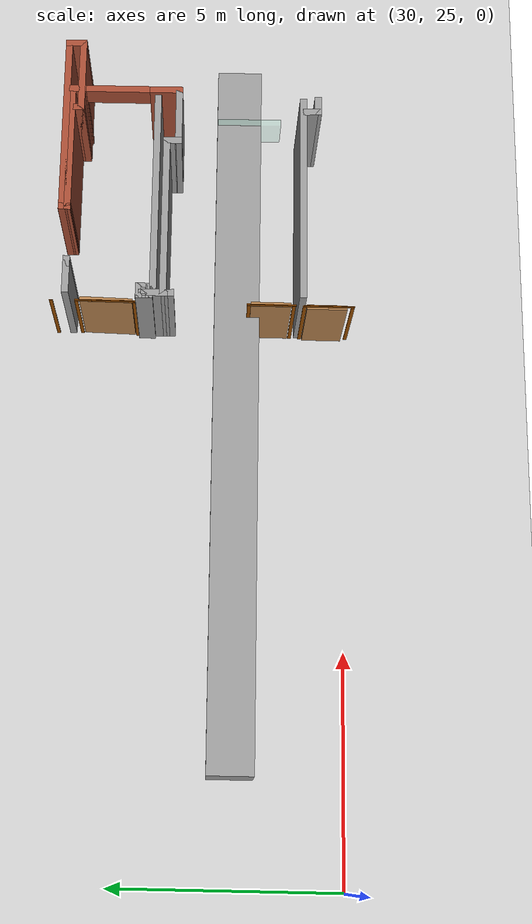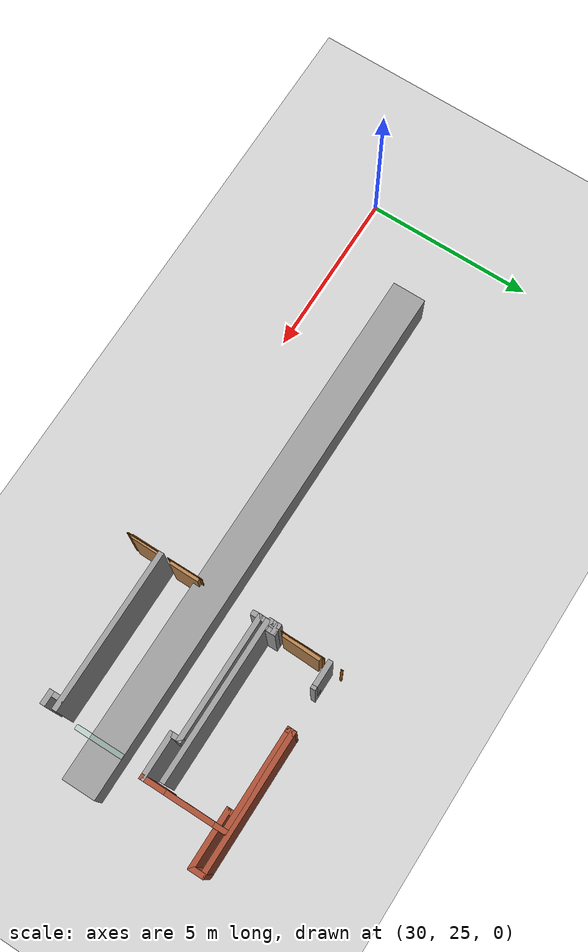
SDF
<sdf version="1.6">
 <world name="default">
  <model name="ground_plane">
   <static>1</static>
   <link name="link">
    <collision name="collision">
     <geometry><plane><normal>0 0 1</normal><size>100 100</size></plane></geometry>
     <surface><friction><ode><mu>100</mu><mu2>50</mu2></ode></friction></surface>
    </collision>
    <visual name="visual">
     <cast_shadows>0</cast_shadows>
     <geometry><plane><normal>0 0 1</normal><size>100 100</size></plane></geometry>
     <material>
      <script><uri>file://media/materials/scripts/gazebo.material</uri><name>Gazebo/Grey</name></script>
     </material>
    </visual>
   </link>
  </model>
  <model name="CVSSP">
   <pose>23.8714 24.094 0 0 -0 0</pose>
   <link name="Wall_137">
    <collision name="Wall_137_Collision">
     <geometry><box><size>0.344547 0.15 2.5</size></box></geometry>
     <pose>0 0 1.25 0 -0 0</pose>
    </collision>
    <visual name="Wall_137_Visual">
     <pose>0 0 1.25 0 -0 0</pose>
     <geometry><box><size>0.344547 0.15 2.5</size></box></geometry>
     <material>
      <script><uri>file://media/materials/scripts/gazebo.material</uri><name>Gazebo/Grey</name></script>
      <ambient>1 1 1 1</ambient>
     </material>
    </visual>
    <pose>18.4776 5.4664 0 0 -0 0</pose>
   </link>
   <link name="Wall_138">
    <collision name="Wall_138_Collision">
     <geometry><box><size>0.37481 0.15 2.5</size></box></geometry>
     <pose>0 0 1.25 0 -0 0</pose>
    </collision>
    <visual name="Wall_138_Visual">
     <pose>0 0 1.25 0 -0 0</pose>
     <geometry><box><size>0.37481 0.15 2.5</size></box></geometry>
     <material>
      <script><uri>file://media/materials/scripts/gazebo.material</uri><name>Gazebo/Grey</name></script>
      <ambient>1 1 1 1</ambient>
     </material>
    </visual>
    <pose>18.5749 5.354 0 0 0 -1.5708</pose>
   </link>
   <link name="Wall_139">
    <collision name="Wall_139_Collision">
     <geometry><box><size>0.344547 0.15 2.5</size></box></geometry>
     <pose>0 0 1.25 0 -0 0</pose>
    </collision>
    <visual name="Wall_139_Visual">
     <pose>0 0 1.25 0 -0 0</pose>
     <geometry><box><size>0.344547 0.15 2.5</size></box></geometry>
     <material>
      <script><uri>file://media/materials/scripts/gazebo.material</uri><name>Gazebo/Grey</name></script>
      <ambient>1 1 1 1</ambient>
     </material>
    </visual>
    <pose>18.4776 5.24159 0 0 -0 3.14159</pose>
   </link>
   <link name="Wall_140">
    <collision name="Wall_140_Collision">
     <geometry><box><size>0.370487 0.15 2.5</size></box></geometry>
     <pose>0 0 1.25 0 -0 0</pose>
    </collision>
    <visual name="Wall_140_Visual">
     <pose>0 0 1.25 0 -0 0</pose>
     <geometry><box><size>0.370487 0.15 2.5</size></box></geometry>
     <material>
      <script><uri>file://media/materials/scripts/gazebo.material</uri><name>Gazebo/Grey</name></script>
      <ambient>1 1 1 1</ambient>
     </material>
    </visual>
    <pose>18.3803 5.35184 0 0 -0 1.5708</pose>
   </link>
   <link name="Wall_142">
    <collision name="Wall_142_Collision">
     <geometry><box><size>4.79472 0.15 2.5</size></box></geometry>
     <pose>0 0 1.25 0 -0 0</pose>
    </collision>
    <visual name="Wall_142_Visual">
     <pose>0 0 1.25 0 -0 0</pose>
     <geometry><box><size>4.79472 0.15 2.5</size></box></geometry>
     <material>
      <script><uri>file://media/materials/scripts/gazebo.material</uri><name>Gazebo/Grey</name></script>
      <ambient>1 1 1 1</ambient>
     </material>
    </visual>
    <pose>20.7622 5.16977 0 0 0 -3.14127</pose>
   </link>
   <link name="Wall_145">
    <collision name="Wall_145_Collision">
     <geometry><box><size>3.74924 0.15 2.5</size></box></geometry>
     <pose>0 0 1.25 0 -0 0</pose>
    </collision>
    <visual name="Wall_145_Visual">
     <pose>0 0 1.25 0 -0 0</pose>
     <geometry><box><size>3.74924 0.15 2.5</size></box></geometry>
     <material>
      <script><uri>file://media/materials/scripts/gazebo.material</uri><name>Gazebo/Grey</name></script>
      <ambient>0.588235 0.588235 0.588235 1</ambient>
     </material>
    </visual>
    <pose>20.2524 4.95267 0 0 -0 0</pose>
   </link>
   <link name="Wall_146">
    <collision name="Wall_146_Collision">
     <geometry><box><size>0.407089 0.15 2.5</size></box></geometry>
     <pose>0 0 1.25 0 -0 0</pose>
    </collision>
    <visual name="Wall_146_Visual">
     <pose>0 0 1.25 0 -0 0</pose>
     <geometry><box><size>0.407089 0.15 2.5</size></box></geometry>
     <material>
      <script><uri>file://media/materials/scripts/gazebo.material</uri><name>Gazebo/Grey</name></script>
      <ambient>1 1 1 1</ambient>
     </material>
    </visual>
    <pose>22.0521 4.82421 0 0 0 -1.57054</pose>
   </link>
   <link name="Wall_147">
    <collision name="Wall_147_Collision">
     <geometry><box><size>1.39069 0.15 2.5</size></box></geometry>
     <pose>0 0 1.25 0 -0 0</pose>
    </collision>
    <visual name="Wall_147_Visual">
     <pose>0 0 1.25 0 -0 0</pose>
     <geometry><box><size>1.39069 0.15 2.5</size></box></geometry>
     <material>
      <script><uri>file://media/materials/scripts/gazebo.material</uri><name>Gazebo/Grey</name></script>
      <ambient>0.588235 0.588235 0.588235 1</ambient>
     </material>
    </visual>
    <pose>22.6726 4.69724 0 0 -0 0.002417</pose>
   </link>
   <link name="Wall_172">
    <collision name="Wall_172_Collision">
     <geometry><box><size>4.75 0.15 2.5</size></box></geometry>
     <pose>0 0 1.25 0 -0 0</pose>
    </collision>
    <visual name="Wall_172_Visual">
     <pose>0 0 1.25 0 -0 0</pose>
     <geometry><box><size>4.75 0.15 2.5</size></box></geometry>
     <material>
      <script><uri>file://media/materials/scripts/gazebo.material</uri><name>Gazebo/Grey</name></script>
      <ambient>0.588235 0.588235 0.588235 1</ambient>
     </material>
    </visual>
    <pose>20.7514 1.93058 0 0 -0 0</pose>
   </link>
   <link name="Wall_200">
    <pose>23.2929 5.89364 0 0 -0 1.57095</pose>
    <visual name="Wall_200_Visual_0">
     <pose>-0.901323 0 1.25 0 -0 0</pose>
     <geometry><box><size>0.73684 0.15 2.5</size></box></geometry>
     <material>
      <script><uri>file://media/materials/scripts/gazebo.material</uri><name>Gazebo/Bricks</name></script>
      <ambient>0.588235 0.588235 0.588235 1</ambient>
     </material>
    </visual>
    <collision name="Wall_200_Collision_0">
     <geometry><box><size>0.73684 0.15 2.5</size></box></geometry>
     <pose>-0.901323 0 1.25 0 -0 0</pose>
    </collision>
    <visual name="Wall_200_Visual_1">
     <pose>1.08077 0 1.25 0 -0 0</pose>
     <geometry><box><size>0.377951 0.15 2.5</size></box></geometry>
     <material>
      <script><uri>file://media/materials/scripts/gazebo.material</uri><name>Gazebo/Bricks</name></script>
      <ambient>0.588235 0.588235 0.588235 1</ambient>
     </material>
    </visual>
    <collision name="Wall_200_Collision_1">
     <geometry><box><size>0.377951 0.15 2.5</size></box></geometry>
     <pose>1.08077 0 1.25 0 -0 0</pose>
    </collision>
    <visual name="Wall_200_Visual_2">
     <pose>0.179445 0 2.25 0 -0 0</pose>
     <geometry><box><size>1.4247 0.15 0.5</size></box></geometry>
     <material>
      <script><uri>file://media/materials/scripts/gazebo.material</uri><name>Gazebo/Bricks</name></script>
      <ambient>0.588235 0.588235 0.588235 1</ambient>
     </material>
    </visual>
    <collision name="Wall_200_Collision_2">
     <geometry><box><size>1.4247 0.15 0.5</size></box></geometry>
     <pose>0.179445 0 2.25 0 -0 0</pose>
    </collision>
   </link>
   <link name="Wall_201">
    <collision name="Wall_201_Collision">
     <geometry><box><size>3.01986 0.15 2.5</size></box></geometry>
     <pose>0 0 1.25 0 -0 0</pose>
    </collision>
    <visual name="Wall_201_Visual">
     <pose>0 0 1.25 0 -0 0</pose>
     <geometry><box><size>3.01986 0.15 2.5</size></box></geometry>
     <material>
      <script><uri>file://media/materials/scripts/gazebo.material</uri><name>Gazebo/Bricks</name></script>
      <ambient>1 1 1 1</ambient>
     </material>
    </visual>
    <pose>21.8512 7.08991 0 0 -0 3.14064</pose>
   </link>
   <link name="Wall_203">
    <collision name="Wall_203_Collision">
     <geometry><box><size>0.268535 0.15 2.5</size></box></geometry>
     <pose>0 0 1.25 0 -0 0</pose>
    </collision>
    <visual name="Wall_203_Visual">
     <pose>0 0 1.25 0 -0 0</pose>
     <geometry><box><size>0.268535 0.15 2.5</size></box></geometry>
     <material>
      <script><uri>file://media/materials/scripts/gazebo.material</uri><name>Gazebo/Bricks</name></script>
      <ambient>1 1 1 1</ambient>
     </material>
    </visual>
    <pose>20.4196 7.15046 0 0 -0 1.5153</pose>
   </link>
   <link name="Wall_204">
    <collision name="Wall_204_Collision">
     <geometry><box><size>4.16742 0.15 2.5</size></box></geometry>
     <pose>0 0 1.25 0 -0 0</pose>
    </collision>
    <visual name="Wall_204_Visual">
     <pose>0 0 1.25 0 -0 0</pose>
     <geometry><box><size>4.16742 0.15 2.5</size></box></geometry>
     <material>
      <script><uri>file://media/materials/scripts/gazebo.material</uri><name>Gazebo/Bricks</name></script>
      <ambient>1 1 1 1</ambient>
     </material>
    </visual>
    <pose>22.425 7.20963 0 0 -0 0</pose>
   </link>
   <link name="Wall_206">
    <collision name="Wall_206_Collision">
     <geometry><box><size>0.472183 0.15 2.5</size></box></geometry>
     <pose>0 0 1.25 0 -0 0</pose>
    </collision>
    <visual name="Wall_206_Visual">
     <pose>0 0 1.25 0 -0 0</pose>
     <geometry><box><size>0.472183 0.15 2.5</size></box></geometry>
     <material>
      <script><uri>file://media/materials/scripts/gazebo.material</uri><name>Gazebo/Bricks</name></script>
      <ambient>1 1 1 1</ambient>
     </material>
    </visual>
    <pose>24.4337 7.04854 0 0 0 -1.5708</pose>
   </link>
   <link name="Wall_207">
    <collision name="Wall_207_Collision">
     <geometry><box><size>1.75 0.15 2.5</size></box></geometry>
     <pose>0 0 1.25 0 -0 0</pose>
    </collision>
    <visual name="Wall_207_Visual">
     <pose>0 0 1.25 0 -0 0</pose>
     <geometry><box><size>1.75 0.15 2.5</size></box></geometry>
     <material>
      <script><uri>file://media/materials/scripts/gazebo.material</uri><name>Gazebo/Bricks</name></script>
      <ambient>1 1 1 1</ambient>
     </material>
    </visual>
    <pose>23.6337 6.88745 0 0 -0 3.14159</pose>
   </link>
   <link name="Wall_208">
    <collision name="Wall_208_Collision">
     <geometry><box><size>0.25 0.15 2.5</size></box></geometry>
     <pose>0 0 1.25 0 -0 0</pose>
    </collision>
    <visual name="Wall_208_Visual">
     <pose>0 0 1.25 0 -0 0</pose>
     <geometry><box><size>0.25 0.15 2.5</size></box></geometry>
     <material>
      <script><uri>file://media/materials/scripts/gazebo.material</uri><name>Gazebo/Bricks</name></script>
      <ambient>1 1 1 1</ambient>
     </material>
    </visual>
    <pose>22.8337 6.93745 0 0 -0 1.5708</pose>
   </link>
   <link name="Wall_222">
    <collision name="Wall_222_Collision">
     <geometry><box><size>0.75 0.15 2.5</size></box></geometry>
     <pose>0 0 1.25 0 -0 0</pose>
    </collision>
    <visual name="Wall_222_Visual">
     <pose>0 0 1.25 0 -0 0</pose>
     <geometry><box><size>0.75 0.15 2.5</size></box></geometry>
     <material>
      <script><uri>file://media/materials/scripts/gazebo.material</uri><name>Gazebo/Grey</name></script>
      <ambient>0.588235 0.588235 0.588235 1</ambient>
     </material>
    </visual>
    <pose>18.778 7.05344 0 0 -0 0</pose>
   </link>
   <link name="Wall_223">
    <collision name="Wall_223_Collision">
     <geometry><box><size>0.25 0.15 2.5</size></box></geometry>
     <pose>0 0 1.25 0 -0 0</pose>
    </collision>
    <visual name="Wall_223_Visual">
     <pose>0 0 1.25 0 -0 0</pose>
     <geometry><box><size>0.25 0.15 2.5</size></box></geometry>
     <material>
      <script><uri>file://media/materials/scripts/gazebo.material</uri><name>Gazebo/Grey</name></script>
      <ambient>1 1 1 1</ambient>
     </material>
    </visual>
    <pose>19.128 7.05344 0 0 -0 0</pose>
   </link>
   <link name="Wall_736">
    <collision name="Wall_736_Collision">
     <geometry><box><size>0.438586 0.15 2.5</size></box></geometry>
     <pose>0 0 1.25 0 -0 0</pose>
    </collision>
    <visual name="Wall_736_Visual">
     <pose>0 0 1.25 0 -0 0</pose>
     <geometry><box><size>0.438586 0.15 2.5</size></box></geometry>
     <material>
      <script><uri>file://media/materials/scripts/gazebo.material</uri><name>Gazebo/Grey</name></script>
      <ambient>1 1 1 1</ambient>
     </material>
    </visual>
    <pose>22.952 1.6054 0 0 -0 3.14159</pose>
   </link>
   <link name="Wall_737">
    <collision name="Wall_737_Collision">
     <geometry><box><size>0.457198 0.15 2.5</size></box></geometry>
     <pose>0 0 1.25 0 -0 0</pose>
    </collision>
    <visual name="Wall_737_Visual">
     <pose>0 0 1.25 0 -0 0</pose>
     <geometry><box><size>0.457198 0.15 2.5</size></box></geometry>
     <material>
      <script><uri>file://media/materials/scripts/gazebo.material</uri><name>Gazebo/Grey</name></script>
      <ambient>1 1 1 1</ambient>
     </material>
    </visual>
    <pose>22.8034 1.75843 0 0 -0 1.59936</pose>
   </link>
   <link name="Wall_79">
    <collision name="Wall_79_Collision">
     <geometry><box><size>0.15 0.15 2.5</size></box></geometry>
     <pose>0 0 1.25 0 -0 0</pose>
    </collision>
    <visual name="Wall_79_Visual">
     <pose>0 0 1.25 0 -0 0</pose>
     <geometry><box><size>0.15 0.15 2.5</size></box></geometry>
     <material>
      <script><uri>file://media/materials/scripts/gazebo.material</uri><name>Gazebo/Grey</name></script>
      <ambient>1 1 1 1</ambient>
     </material>
    </visual>
    <pose>18.4772 5.34496 0 0 -0 0</pose>
   </link>
   <link name="Wall_80">
    <collision name="Wall_80_Collision">
     <geometry><box><size>0.15 0.15 2.5</size></box></geometry>
     <pose>0 0 1.25 0 -0 0</pose>
    </collision>
    <visual name="Wall_80_Visual">
     <pose>0 0 1.25 0 -0 0</pose>
     <geometry><box><size>0.15 0.15 2.5</size></box></geometry>
     <material>
      <script><uri>file://media/materials/scripts/gazebo.material</uri><name>Gazebo/Grey</name></script>
      <ambient>1 1 1 1</ambient>
     </material>
    </visual>
    <pose>18.4772 5.34496 0 0 -0 0</pose>
   </link>
   <link name="Wall_82">
    <collision name="Wall_82_Collision">
     <geometry><box><size>0.279389 0.15 2.5</size></box></geometry>
     <pose>0 0 1.25 0 -0 0</pose>
    </collision>
    <visual name="Wall_82_Visual">
     <pose>0 0 1.25 0 -0 0</pose>
     <geometry><box><size>0.279389 0.15 2.5</size></box></geometry>
     <material>
      <script><uri>file://media/materials/scripts/gazebo.material</uri><name>Gazebo/Grey</name></script>
      <ambient>1 1 1 1</ambient>
     </material>
    </visual>
    <pose>18.435 4.85136 0 0 -0 1.60628</pose>
   </link>
   <link name="Wall_83">
    <collision name="Wall_83_Collision">
     <geometry><box><size>0.633672 0.15 2.5</size></box></geometry>
     <pose>0 0 1.25 0 -0 0</pose>
    </collision>
    <visual name="Wall_83_Visual">
     <pose>0 0 1.25 0 -0 0</pose>
     <geometry><box><size>0.633672 0.15 2.5</size></box></geometry>
     <material>
      <script><uri>file://media/materials/scripts/gazebo.material</uri><name>Gazebo/Grey</name></script>
      <ambient>1 1 1 1</ambient>
     </material>
    </visual>
    <pose>18.4338 5.15785 0 0 -0 1.56641</pose>
   </link>
   <static>1</static>
  </model>
  <model name="window_0_clone_clone_clone_0">
   <link name="link">
    <inertial>
     <mass>0.185318</mass>
     <inertia>
      <ixx>0.0157792</ixx>
      <ixy>0</ixy>
      <ixz>0</ixz>
      <iyy>0.0398142</iyy>
      <iyz>0</iyz>
      <izz>0.0247071</izz>
     </inertia>
    </inertial>
    <visual name="visual">
     <geometry><box><size>1.44901 0.147514 0.798588</size></box></geometry>
     <material>
      <script><name>Gazebo/Grey</name><uri>file://media/materials/scripts/gazebo.material</uri></script>
      <shader type="pixel"><normal_map>__default__</normal_map></shader>
      <ambient>0.435 0.796 0.675 1</ambient>
      <diffuse>0.7 0.7 0.7 1</diffuse>
      <specular>0.01 0.01 0.01 1</specular>
      <emissive>0 0 0 1</emissive>
     </material>
     <transparency>0.8</transparency>
    </visual>
    <collision name="collision">
     <geometry><box><size>1.44901 0.147514 0.798588</size></box></geometry>
     <surface>
      <friction>
       <ode><mu>1</mu><mu2>1</mu2><fdir1>0 0 0</fdir1><slip1>0</slip1><slip2>0</slip2></ode>
       <torsional>
        <coefficient>1</coefficient>
        <patch_radius>0</patch_radius>
        <surface_radius>0</surface_radius>
        <use_patch_radius>1</use_patch_radius>
        <ode><slip>0</slip></ode>
       </torsional>
      </friction>
      <bounce><restitution_coefficient>0</restitution_coefficient><threshold>1e+06</threshold></bounce>
      <contact>
       <collide_without_contact>0</collide_without_contact>
       <collide_without_contact_bitmask>1</collide_without_contact_bitmask>
       <collide_bitmask>1</collide_bitmask>
       <ode>
        <soft_cfm>0</soft_cfm>
        <soft_erp>0.2</soft_erp>
        <kp>1e+13</kp>
        <kd>1</kd>
        <max_vel>0.01</max_vel>
        <min_depth>0</min_depth>
       </ode>
       <bullet>
        <split_impulse>1</split_impulse>
        <split_impulse_penetration_threshold>-0.01</split_impulse_penetration_threshold>
        <soft_cfm>0</soft_cfm>
        <soft_erp>0.2</soft_erp>
        <kp>1e+13</kp>
        <kd>1</kd>
       </bullet>
      </contact>
     </surface>
    </collision>
   </link>
   <static>1</static>
   <pose>47.0334 27.1977 0.904256 0 -0 1.57547</pose>
  </model>
  <model name="basic_ply_door_corrected_clone_0_clone_clone">
   <link name="link">
    <pose>-0 0 1.00385 0 -0 0</pose>
    <inertial>
     <mass>0.5167</mass>
     <inertia>
      <ixx>0.00086117</ixx>
      <ixy>0</ixy>
      <ixz>0</ixz>
      <iyy>0.00086117</iyy>
      <iyz>0</iyz>
      <izz>0.00086117</izz>
     </inertia>
    </inertial>
    <gravity>0</gravity>
    <visual name="visual">
     <geometry><box><size>0.88 0.1 1.96</size></box></geometry>
     <material>
      <script><uri>file://media/materials/scripts/gazebo.material</uri><name>Gazebo/Wood</name></script>
      <shader type="pixel"><normal_map>__default__</normal_map></shader>
      <ambient>1 1 1 1</ambient>
      <diffuse>1 1 1 1</diffuse>
      <specular>0.2 0.2 0.2 1</specular>
      <emissive>0 0 0 1</emissive>
     </material>
    </visual>
    <collision name="collision">
     <geometry><box><size>0.88 0.1 1.96</size></box></geometry>
     <surface>
      <friction>
       <ode><mu>1</mu><mu2>1</mu2><fdir1>0 0 0</fdir1><slip1>0</slip1><slip2>0</slip2></ode>
       <torsional>
        <coefficient>1</coefficient>
        <patch_radius>0</patch_radius>
        <surface_radius>0.01</surface_radius>
        <use_patch_radius>0</use_patch_radius>
        <ode><slip>0</slip></ode>
       </torsional>
      </friction>
      <bounce><restitution_coefficient>0</restitution_coefficient><threshold>1e+06</threshold></bounce>
      <contact>
       <collide_without_contact>0</collide_without_contact>
       <collide_without_contact_bitmask>1</collide_without_contact_bitmask>
       <collide_bitmask>1</collide_bitmask>
       <ode>
        <soft_cfm>0</soft_cfm>
        <soft_erp>0.2</soft_erp>
        <kp>100000</kp>
        <kd>100</kd>
        <max_vel>100</max_vel>
        <min_depth>0.001</min_depth>
       </ode>
       <bullet>
        <split_impulse>1</split_impulse>
        <split_impulse_penetration_threshold>-0.01</split_impulse_penetration_threshold>
        <soft_cfm>0</soft_cfm>
        <soft_erp>0.2</soft_erp>
        <kp>100000</kp>
        <kd>100</kd>
       </bullet>
      </contact>
     </surface>
    </collision>
   </link>
   <static>1</static>
   <pose>42.2811 26.6943 -0.00101 0 -0 1.56379</pose>
  </model>
  <model name="basic_ply_door_corrected_clone_0_clone_clone_0">
   <link name="link">
    <pose>-0 0 1.00385 0 -0 0</pose>
    <inertial>
     <mass>0.5167</mass>
     <inertia>
      <ixx>0.00086117</ixx>
      <ixy>0</ixy>
      <ixz>0</ixz>
      <iyy>0.00086117</iyy>
      <iyz>0</iyz>
      <izz>0.00086117</izz>
     </inertia>
    </inertial>
    <gravity>0</gravity>
    <visual name="visual">
     <geometry><box><size>0.88 0.1 1.96</size></box></geometry>
     <material>
      <script><uri>file://media/materials/scripts/gazebo.material</uri><name>Gazebo/Wood</name></script>
      <shader type="pixel"><normal_map>__default__</normal_map></shader>
      <ambient>1 1 1 1</ambient>
      <diffuse>1 1 1 1</diffuse>
      <specular>0.2 0.2 0.2 1</specular>
      <emissive>0 0 0 1</emissive>
     </material>
    </visual>
    <collision name="collision">
     <geometry><box><size>0.88 0.1 1.96</size></box></geometry>
     <surface>
      <friction>
       <ode><mu>1</mu><mu2>1</mu2><fdir1>0 0 0</fdir1><slip1>0</slip1><slip2>0</slip2></ode>
       <torsional>
        <coefficient>1</coefficient>
        <patch_radius>0</patch_radius>
        <surface_radius>0.01</surface_radius>
        <use_patch_radius>0</use_patch_radius>
        <ode><slip>0</slip></ode>
       </torsional>
      </friction>
      <bounce><restitution_coefficient>0</restitution_coefficient><threshold>1e+06</threshold></bounce>
      <contact>
       <collide_without_contact>0</collide_without_contact>
       <collide_without_contact_bitmask>1</collide_without_contact_bitmask>
       <collide_bitmask>1</collide_bitmask>
       <ode>
        <soft_cfm>0</soft_cfm>
        <soft_erp>0.2</soft_erp>
        <kp>100000</kp>
        <kd>100</kd>
        <max_vel>100</max_vel>
        <min_depth>0.001</min_depth>
       </ode>
       <bullet>
        <split_impulse>1</split_impulse>
        <split_impulse_penetration_threshold>-0.01</split_impulse_penetration_threshold>
        <soft_cfm>0</soft_cfm>
        <soft_erp>0.2</soft_erp>
        <kp>100000</kp>
        <kd>100</kd>
       </bullet>
      </contact>
     </surface>
    </collision>
   </link>
   <static>1</static>
   <pose>42.2357 25.4705 -0.00101 0 -0 1.56379</pose>
  </model>
  <model name="metal_radiator">
   <link name="link">
    <inertial>
     <mass>1</mass>
     <inertia>
      <ixx>0.166667</ixx>
      <ixy>0</ixy>
      <ixz>0</ixz>
      <iyy>0.166667</iyy>
      <iyz>0</iyz>
      <izz>0.166667</izz>
     </inertia>
    </inertial>
    <gravity>0</gravity>
    <visual name="visual">
     <geometry><box><size>16.0438 1 1.49588</size></box></geometry>
     <material>
      <script><name>Gazebo/Grey</name><uri>file://media/materials/scripts/gazebo.material</uri></script>
      <shader type="pixel"><normal_map>__default__</normal_map></shader>
      <emissive>0 0 0 1</emissive>
      <ambient>1 1 1 1</ambient>
      <diffuse>0.7 0.7 0.7 1</diffuse>
      <specular>0.01 0.01 0.01 1</specular>
      <lighting>0</lighting>
     </material>
    </visual>
    <collision name="collision">
     <geometry><box><size>16.0438 1 1.49588</size></box></geometry>
     <surface>
      <friction>
       <ode><mu>1</mu><mu2>1</mu2><fdir1>0 0 0</fdir1><slip1>0</slip1><slip2>0</slip2></ode>
       <torsional>
        <coefficient>1</coefficient>
        <patch_radius>0</patch_radius>
        <surface_radius>0</surface_radius>
        <use_patch_radius>1</use_patch_radius>
        <ode><slip>0</slip></ode>
       </torsional>
      </friction>
      <bounce><restitution_coefficient>0</restitution_coefficient><threshold>1e+06</threshold></bounce>
      <contact>
       <collide_without_contact>0</collide_without_contact>
       <collide_without_contact_bitmask>1</collide_without_contact_bitmask>
       <collide_bitmask>1</collide_bitmask>
       <ode>
        <soft_cfm>0</soft_cfm>
        <soft_erp>0.2</soft_erp>
        <kp>1e+13</kp>
        <kd>1</kd>
        <max_vel>0.01</max_vel>
        <min_depth>0</min_depth>
       </ode>
       <bullet>
        <split_impulse>1</split_impulse>
        <split_impulse_penetration_threshold>-0.01</split_impulse_penetration_threshold>
        <soft_cfm>0</soft_cfm>
        <soft_erp>0.2</soft_erp>
        <kp>1e+13</kp>
        <kd>1</kd>
       </bullet>
      </contact>
     </surface>
    </collision>
   </link>
   <static>1</static>
   <pose>40.2852 27.4289 0.545875 0 -0 0</pose>
  </model>
  <model name="oak_frame_0_clone_clone">
   <link name="link">
    <inertial>
     <mass>1</mass>
     <inertia>
      <ixx>0.166667</ixx>
      <ixy>0</ixy>
      <ixz>0</ixz>
      <iyy>0.166667</iyy>
      <iyz>0</iyz>
      <izz>0.166667</izz>
     </inertia>
    </inertial>
    <visual name="visual">
     <geometry><box><size>0.018685 0.076446 2.026</size></box></geometry>
     <material>
      <script><name>Gazebo/Grey</name><uri>file://media/materials/scripts/gazebo.material</uri></script>
      <shader type="pixel"><normal_map>__default__</normal_map></shader>
      <diffuse>0.58 0.29 0 0</diffuse>
      <ambient>0.58 0.29 0 1</ambient>
      <specular>0.01 0.01 0.01 1</specular>
      <emissive>0 0 0 1</emissive>
     </material>
    </visual>
    <collision name="collision">
     <geometry><box><size>0.018685 0.076446 2.026</size></box></geometry>
     <surface>
      <friction>
       <ode><mu>1</mu><mu2>1</mu2><fdir1>0 0 0</fdir1><slip1>0</slip1><slip2>0</slip2></ode>
       <torsional>
        <coefficient>1</coefficient>
        <patch_radius>0</patch_radius>
        <surface_radius>0</surface_radius>
        <use_patch_radius>1</use_patch_radius>
        <ode><slip>0</slip></ode>
       </torsional>
      </friction>
      <bounce><restitution_coefficient>0</restitution_coefficient><threshold>1e+06</threshold></bounce>
      <contact>
       <collide_without_contact>0</collide_without_contact>
       <collide_without_contact_bitmask>1</collide_without_contact_bitmask>
       <collide_bitmask>1</collide_bitmask>
       <ode>
        <soft_cfm>0</soft_cfm>
        <soft_erp>0.2</soft_erp>
        <kp>1e+13</kp>
        <kd>1</kd>
        <max_vel>0.01</max_vel>
        <min_depth>0</min_depth>
       </ode>
       <bullet>
        <split_impulse>1</split_impulse>
        <split_impulse_penetration_threshold>-0.01</split_impulse_penetration_threshold>
        <soft_cfm>0</soft_cfm>
        <soft_erp>0.2</soft_erp>
        <kp>1e+13</kp>
        <kd>1</kd>
       </bullet>
      </contact>
     </surface>
    </collision>
   </link>
   <static>1</static>
   <pose>42.2231 25.9652 1.03242 0 -0 0</pose>
  </model>
  <model name="oak_frame_0_clone_clone_0">
   <link name="link">
    <inertial>
     <mass>1</mass>
     <inertia>
      <ixx>0.166667</ixx>
      <ixy>0</ixy>
      <ixz>0</ixz>
      <iyy>0.166667</iyy>
      <iyz>0</iyz>
      <izz>0.166667</izz>
     </inertia>
    </inertial>
    <visual name="visual">
     <geometry><box><size>0.018685 0.076446 2.026</size></box></geometry>
     <material>
      <script><name>Gazebo/Grey</name><uri>file://media/materials/scripts/gazebo.material</uri></script>
      <shader type="pixel"><normal_map>__default__</normal_map></shader>
      <diffuse>0.58 0.29 0 0</diffuse>
      <ambient>0.58 0.29 0 1</ambient>
      <specular>0.01 0.01 0.01 1</specular>
      <emissive>0 0 0 1</emissive>
     </material>
    </visual>
    <collision name="collision">
     <geometry><box><size>0.018685 0.076446 2.026</size></box></geometry>
     <surface>
      <friction>
       <ode><mu>1</mu><mu2>1</mu2><fdir1>0 0 0</fdir1><slip1>0</slip1><slip2>0</slip2></ode>
       <torsional>
        <coefficient>1</coefficient>
        <patch_radius>0</patch_radius>
        <surface_radius>0</surface_radius>
        <use_patch_radius>1</use_patch_radius>
        <ode><slip>0</slip></ode>
       </torsional>
      </friction>
      <bounce><restitution_coefficient>0</restitution_coefficient><threshold>1e+06</threshold></bounce>
      <contact>
       <collide_without_contact>0</collide_without_contact>
       <collide_without_contact_bitmask>1</collide_without_contact_bitmask>
       <collide_bitmask>1</collide_bitmask>
       <ode>
        <soft_cfm>0</soft_cfm>
        <soft_erp>0.2</soft_erp>
        <kp>1e+13</kp>
        <kd>1</kd>
        <max_vel>0.01</max_vel>
        <min_depth>0</min_depth>
       </ode>
       <bullet>
        <split_impulse>1</split_impulse>
        <split_impulse_penetration_threshold>-0.01</split_impulse_penetration_threshold>
        <soft_cfm>0</soft_cfm>
        <soft_erp>0.2</soft_erp>
        <kp>1e+13</kp>
        <kd>1</kd>
       </bullet>
      </contact>
     </surface>
    </collision>
   </link>
   <static>1</static>
   <pose>42.2348 24.9161 1.03242 0 -0 0</pose>
  </model>
  <model name="oak_frame_0_clone_clone_1">
   <link name="link">
    <inertial>
     <mass>1</mass>
     <inertia>
      <ixx>0.166667</ixx>
      <ixy>0</ixy>
      <ixz>0</ixz>
      <iyy>0.166667</iyy>
      <iyz>0</iyz>
      <izz>0.166667</izz>
     </inertia>
    </inertial>
    <visual name="visual">
     <geometry><box><size>0.018685 0.076446 2.026</size></box></geometry>
     <material>
      <script><name>Gazebo/Grey</name><uri>file://media/materials/scripts/gazebo.material</uri></script>
      <shader type="pixel"><normal_map>__default__</normal_map></shader>
      <diffuse>0.58 0.29 0 0</diffuse>
      <ambient>0.58 0.29 0 1</ambient>
      <specular>0.01 0.01 0.01 1</specular>
      <emissive>0 0 0 1</emissive>
     </material>
    </visual>
    <collision name="collision">
     <geometry><box><size>0.018685 0.076446 2.026</size></box></geometry>
     <surface>
      <friction>
       <ode><mu>1</mu><mu2>1</mu2><fdir1>0 0 0</fdir1><slip1>0</slip1><slip2>0</slip2></ode>
       <torsional>
        <coefficient>1</coefficient>
        <patch_radius>0</patch_radius>
        <surface_radius>0</surface_radius>
        <use_patch_radius>1</use_patch_radius>
        <ode><slip>0</slip></ode>
       </torsional>
      </friction>
      <bounce><restitution_coefficient>0</restitution_coefficient><threshold>1e+06</threshold></bounce>
      <contact>
       <collide_without_contact>0</collide_without_contact>
       <collide_without_contact_bitmask>1</collide_without_contact_bitmask>
       <collide_bitmask>1</collide_bitmask>
       <ode>
        <soft_cfm>0</soft_cfm>
        <soft_erp>0.2</soft_erp>
        <kp>1e+13</kp>
        <kd>1</kd>
        <max_vel>0.01</max_vel>
        <min_depth>0</min_depth>
       </ode>
       <bullet>
        <split_impulse>1</split_impulse>
        <split_impulse_penetration_threshold>-0.01</split_impulse_penetration_threshold>
        <soft_cfm>0</soft_cfm>
        <soft_erp>0.2</soft_erp>
        <kp>1e+13</kp>
        <kd>1</kd>
       </bullet>
      </contact>
     </surface>
    </collision>
   </link>
   <static>1</static>
   <pose>42.2324 26.1959 1.03242 0 -0 0</pose>
  </model>
  <model name="oak_frame_0_clone_clone_2">
   <link name="link">
    <inertial>
     <mass>1</mass>
     <inertia>
      <ixx>0.166667</ixx>
      <ixy>0</ixy>
      <ixz>0</ixz>
      <iyy>0.166667</iyy>
      <iyz>0</iyz>
      <izz>0.166667</izz>
     </inertia>
    </inertial>
    <visual name="visual">
     <geometry><box><size>0.018685 0.076446 2.026</size></box></geometry>
     <material>
      <script><name>Gazebo/Grey</name><uri>file://media/materials/scripts/gazebo.material</uri></script>
      <shader type="pixel"><normal_map>__default__</normal_map></shader>
      <diffuse>0.58 0.29 0 0</diffuse>
      <ambient>0.58 0.29 0 1</ambient>
      <specular>0.01 0.01 0.01 1</specular>
      <emissive>0 0 0 1</emissive>
     </material>
    </visual>
    <collision name="collision">
     <geometry><box><size>0.018685 0.076446 2.026</size></box></geometry>
     <surface>
      <friction>
       <ode><mu>1</mu><mu2>1</mu2><fdir1>0 0 0</fdir1><slip1>0</slip1><slip2>0</slip2></ode>
       <torsional>
        <coefficient>1</coefficient>
        <patch_radius>0</patch_radius>
        <surface_radius>0</surface_radius>
        <use_patch_radius>1</use_patch_radius>
        <ode><slip>0</slip></ode>
       </torsional>
      </friction>
      <bounce><restitution_coefficient>0</restitution_coefficient><threshold>1e+06</threshold></bounce>
      <contact>
       <collide_without_contact>0</collide_without_contact>
       <collide_without_contact_bitmask>1</collide_without_contact_bitmask>
       <collide_bitmask>1</collide_bitmask>
       <ode>
        <soft_cfm>0</soft_cfm>
        <soft_erp>0.2</soft_erp>
        <kp>1e+13</kp>
        <kd>1</kd>
        <max_vel>0.01</max_vel>
        <min_depth>0</min_depth>
       </ode>
       <bullet>
        <split_impulse>1</split_impulse>
        <split_impulse_penetration_threshold>-0.01</split_impulse_penetration_threshold>
        <soft_cfm>0</soft_cfm>
        <soft_erp>0.2</soft_erp>
        <kp>1e+13</kp>
        <kd>1</kd>
       </bullet>
      </contact>
     </surface>
    </collision>
   </link>
   <static>1</static>
   <pose>42.2379 27.1754 1.03242 0 -0 0</pose>
  </model>
  <model name="oak_frame_0_clone_clone_3">
   <link name="link">
    <inertial>
     <mass>1</mass>
     <inertia>
      <ixx>0.166667</ixx>
      <ixy>0</ixy>
      <ixz>0</ixz>
      <iyy>0.166667</iyy>
      <iyz>0</iyz>
      <izz>0.166667</izz>
     </inertia>
    </inertial>
    <visual name="visual">
     <geometry><box><size>0.018685 0.076446 2.026</size></box></geometry>
     <material>
      <script><name>Gazebo/Grey</name><uri>file://media/materials/scripts/gazebo.material</uri></script>
      <shader type="pixel"><normal_map>__default__</normal_map></shader>
      <diffuse>0.58 0.29 0 0</diffuse>
      <ambient>0.58 0.29 0 1</ambient>
      <specular>0.01 0.01 0.01 1</specular>
      <emissive>0 0 0 1</emissive>
     </material>
    </visual>
    <collision name="collision">
     <geometry><box><size>0.018685 0.076446 2.026</size></box></geometry>
     <surface>
      <friction>
       <ode><mu>1</mu><mu2>1</mu2><fdir1>0 0 0</fdir1><slip1>0</slip1><slip2>0</slip2></ode>
       <torsional>
        <coefficient>1</coefficient>
        <patch_radius>0</patch_radius>
        <surface_radius>0</surface_radius>
        <use_patch_radius>1</use_patch_radius>
        <ode><slip>0</slip></ode>
       </torsional>
      </friction>
      <bounce><restitution_coefficient>0</restitution_coefficient><threshold>1e+06</threshold></bounce>
      <contact>
       <collide_without_contact>0</collide_without_contact>
       <collide_without_contact_bitmask>1</collide_without_contact_bitmask>
       <collide_bitmask>1</collide_bitmask>
       <ode>
        <soft_cfm>0</soft_cfm>
        <soft_erp>0.2</soft_erp>
        <kp>1e+13</kp>
        <kd>1</kd>
        <max_vel>0.01</max_vel>
        <min_depth>0</min_depth>
       </ode>
       <bullet>
        <split_impulse>1</split_impulse>
        <split_impulse_penetration_threshold>-0.01</split_impulse_penetration_threshold>
        <soft_cfm>0</soft_cfm>
        <soft_erp>0.2</soft_erp>
        <kp>1e+13</kp>
        <kd>1</kd>
       </bullet>
      </contact>
     </surface>
    </collision>
   </link>
   <static>1</static>
   <pose>42.2743 31.4853 1.03242 0 -0 0</pose>
  </model>
  <model name="basic_ply_door_corrected_stairs">
   <link name="link">
    <pose>0 0 1.00385 0 -0 0</pose>
    <inertial>
     <mass>0.5167</mass>
     <inertia>
      <ixx>0.00086117</ixx>
      <ixy>0</ixy>
      <ixz>0</ixz>
      <iyy>0.00086117</iyy>
      <iyz>0</iyz>
      <izz>0.00086117</izz>
     </inertia>
    </inertial>
    <visual name="visual">
     <geometry><box><size>1.15 0.1 1.96</size></box></geometry>
     <material>
      <script><uri>file://media/materials/scripts/gazebo.material</uri><name>Gazebo/Wood</name></script>
      <shader type="pixel"><normal_map>__default__</normal_map></shader>
      <ambient>1 1 1 1</ambient>
      <diffuse>1 1 1 1</diffuse>
      <specular>0.2 0.2 0.2 1</specular>
      <emissive>0 0 0 1</emissive>
     </material>
    </visual>
    <collision name="collision">
     <geometry><box><size>1.15 0.1 1.96</size></box></geometry>
     <surface>
      <friction>
       <ode><mu>1</mu><mu2>1</mu2><fdir1>0 0 0</fdir1><slip1>0</slip1><slip2>0</slip2></ode>
       <torsional>
        <coefficient>1</coefficient>
        <patch_radius>0</patch_radius>
        <surface_radius>0.01</surface_radius>
        <use_patch_radius>0</use_patch_radius>
        <ode><slip>0</slip></ode>
       </torsional>
      </friction>
      <bounce><restitution_coefficient>0</restitution_coefficient><threshold>1e+06</threshold></bounce>
      <contact>
       <collide_without_contact>0</collide_without_contact>
       <collide_without_contact_bitmask>1</collide_without_contact_bitmask>
       <collide_bitmask>1</collide_bitmask>
       <ode>
        <soft_cfm>0</soft_cfm>
        <soft_erp>0.2</soft_erp>
        <kp>100000</kp>
        <kd>100</kd>
        <max_vel>100</max_vel>
        <min_depth>0.001</min_depth>
       </ode>
       <bullet>
        <split_impulse>1</split_impulse>
        <split_impulse_penetration_threshold>-0.01</split_impulse_penetration_threshold>
        <soft_cfm>0</soft_cfm>
        <soft_erp>0.2</soft_erp>
        <kp>100000</kp>
        <kd>100</kd>
       </bullet>
      </contact>
     </surface>
    </collision>
   </link>
   <static>1</static>
   <pose>42.3216 30.2973 0 0 -0 1.54018</pose>
  </model>
  <model name="oak_frame_0_clone_clone_3_clone">
   <link name="link">
    <inertial>
     <mass>1</mass>
     <inertia>
      <ixx>0.166667</ixx>
      <ixy>0</ixy>
      <ixz>0</ixz>
      <iyy>0.166667</iyy>
      <iyz>0</iyz>
      <izz>0.166667</izz>
     </inertia>
    </inertial>
    <visual name="visual">
     <geometry><box><size>0.018685 0.076446 2.026</size></box></geometry>
     <material>
      <script><name>Gazebo/Grey</name><uri>file://media/materials/scripts/gazebo.material</uri></script>
      <shader type="pixel"><normal_map>__default__</normal_map></shader>
      <diffuse>0.58 0.29 0 0</diffuse>
      <ambient>0.58 0.29 0 1</ambient>
      <specular>0.01 0.01 0.01 1</specular>
      <emissive>0 0 0 1</emissive>
     </material>
    </visual>
    <collision name="collision">
     <geometry><box><size>0.018685 0.076446 2.026</size></box></geometry>
     <surface>
      <friction>
       <ode><mu>1</mu><mu2>1</mu2><fdir1>0 0 0</fdir1><slip1>0</slip1><slip2>0</slip2></ode>
       <torsional>
        <coefficient>1</coefficient>
        <patch_radius>0</patch_radius>
        <surface_radius>0</surface_radius>
        <use_patch_radius>1</use_patch_radius>
        <ode><slip>0</slip></ode>
       </torsional>
      </friction>
      <bounce><restitution_coefficient>0</restitution_coefficient><threshold>1e+06</threshold></bounce>
      <contact>
       <collide_without_contact>0</collide_without_contact>
       <collide_without_contact_bitmask>1</collide_without_contact_bitmask>
       <collide_bitmask>1</collide_bitmask>
       <ode>
        <soft_cfm>0</soft_cfm>
        <soft_erp>0.2</soft_erp>
        <kp>1e+13</kp>
        <kd>1</kd>
        <max_vel>0.01</max_vel>
        <min_depth>0</min_depth>
       </ode>
       <bullet>
        <split_impulse>1</split_impulse>
        <split_impulse_penetration_threshold>-0.01</split_impulse_penetration_threshold>
        <soft_cfm>0</soft_cfm>
        <soft_erp>0.2</soft_erp>
        <kp>1e+13</kp>
        <kd>1</kd>
       </bullet>
      </contact>
     </surface>
    </collision>
   </link>
   <static>1</static>
   <pose>42.2785 30.9357 1.03242 0 -0 0</pose>
  </model>
  <model name="oak_frame_0_clone_clone_3_clone_0">
   <link name="link">
    <inertial>
     <mass>1</mass>
     <inertia>
      <ixx>0.166667</ixx>
      <ixy>0</ixy>
      <ixz>0</ixz>
      <iyy>0.166667</iyy>
      <iyz>0</iyz>
      <izz>0.166667</izz>
     </inertia>
    </inertial>
    <visual name="visual">
     <geometry><box><size>0.018685 0.076446 2.026</size></box></geometry>
     <material>
      <script><name>Gazebo/Grey</name><uri>file://media/materials/scripts/gazebo.material</uri></script>
      <shader type="pixel"><normal_map>__default__</normal_map></shader>
      <diffuse>0.58 0.29 0 0</diffuse>
      <ambient>0.58 0.29 0 1</ambient>
      <specular>0.01 0.01 0.01 1</specular>
      <emissive>0 0 0 1</emissive>
     </material>
    </visual>
    <collision name="collision">
     <geometry><box><size>0.018685 0.076446 2.026</size></box></geometry>
     <surface>
      <friction>
       <ode><mu>1</mu><mu2>1</mu2><fdir1>0 0 0</fdir1><slip1>0</slip1><slip2>0</slip2></ode>
       <torsional>
        <coefficient>1</coefficient>
        <patch_radius>0</patch_radius>
        <surface_radius>0</surface_radius>
        <use_patch_radius>1</use_patch_radius>
        <ode><slip>0</slip></ode>
       </torsional>
      </friction>
      <bounce><restitution_coefficient>0</restitution_coefficient><threshold>1e+06</threshold></bounce>
      <contact>
       <collide_without_contact>0</collide_without_contact>
       <collide_without_contact_bitmask>1</collide_without_contact_bitmask>
       <collide_bitmask>1</collide_bitmask>
       <ode>
        <soft_cfm>0</soft_cfm>
        <soft_erp>0.2</soft_erp>
        <kp>1e+13</kp>
        <kd>1</kd>
        <max_vel>0.01</max_vel>
        <min_depth>0</min_depth>
       </ode>
       <bullet>
        <split_impulse>1</split_impulse>
        <split_impulse_penetration_threshold>-0.01</split_impulse_penetration_threshold>
        <soft_cfm>0</soft_cfm>
        <soft_erp>0.2</soft_erp>
        <kp>1e+13</kp>
        <kd>1</kd>
       </bullet>
      </contact>
     </surface>
    </collision>
   </link>
   <static>1</static>
   <pose>42.244 29.6694 1.03242 0 -0 0</pose>
  </model>
  <model name="oak_frame_0_clone_0_clone">
   <link name="link">
    <inertial>
     <mass>1</mass>
     <inertia>
      <ixx>0.166667</ixx>
      <ixy>0</ixy>
      <ixz>0</ixz>
      <iyy>0.166667</iyy>
      <iyz>0</iyz>
      <izz>0.166667</izz>
     </inertia>
    </inertial>
    <visual name="visual">
     <geometry><box><size>0.018685 0.076446 1.08038</size></box></geometry>
     <material>
      <script><name>Gazebo/Grey</name><uri>file://media/materials/scripts/gazebo.material</uri></script>
      <shader type="pixel"><normal_map>__default__</normal_map></shader>
      <diffuse>0.58 0.29 0 0</diffuse>
      <ambient>0.58 0.29 0 1</ambient>
      <specular>0.01 0.01 0.01 1</specular>
      <emissive>0 0 0 1</emissive>
     </material>
    </visual>
    <collision name="collision">
     <geometry><box><size>0.018685 0.076446 1.08038</size></box></geometry>
     <surface>
      <friction>
       <ode><mu>1</mu><mu2>1</mu2><fdir1>0 0 0</fdir1><slip1>0</slip1><slip2>0</slip2></ode>
       <torsional>
        <coefficient>1</coefficient>
        <patch_radius>0</patch_radius>
        <surface_radius>0</surface_radius>
        <use_patch_radius>1</use_patch_radius>
        <ode><slip>0</slip></ode>
       </torsional>
      </friction>
      <bounce><restitution_coefficient>0</restitution_coefficient><threshold>1e+06</threshold></bounce>
      <contact>
       <collide_without_contact>0</collide_without_contact>
       <collide_without_contact_bitmask>1</collide_without_contact_bitmask>
       <collide_bitmask>1</collide_bitmask>
       <ode>
        <soft_cfm>0</soft_cfm>
        <soft_erp>0.2</soft_erp>
        <kp>1e+13</kp>
        <kd>1</kd>
        <max_vel>0.01</max_vel>
        <min_depth>0</min_depth>
       </ode>
       <bullet>
        <split_impulse>1</split_impulse>
        <split_impulse_penetration_threshold>-0.01</split_impulse_penetration_threshold>
        <soft_cfm>0</soft_cfm>
        <soft_erp>0.2</soft_erp>
        <kp>1e+13</kp>
        <kd>1</kd>
       </bullet>
      </contact>
     </surface>
    </collision>
   </link>
   <static>1</static>
   <pose>42.2236 25.4423 2.05002 -1.55236 0 0</pose>
  </model>
  <model name="oak_frame_0_clone_0_clone_0">
   <link name="link">
    <inertial>
     <mass>1</mass>
     <inertia>
      <ixx>0.166667</ixx>
      <ixy>0</ixy>
      <ixz>0</ixz>
      <iyy>0.166667</iyy>
      <iyz>0</iyz>
      <izz>0.166667</izz>
     </inertia>
    </inertial>
    <visual name="visual">
     <geometry><box><size>0.018685 0.076446 1.08038</size></box></geometry>
     <material>
      <script><name>Gazebo/Grey</name><uri>file://media/materials/scripts/gazebo.material</uri></script>
      <shader type="pixel"><normal_map>__default__</normal_map></shader>
      <diffuse>0.58 0.29 0 0</diffuse>
      <ambient>0.58 0.29 0 1</ambient>
      <specular>0.01 0.01 0.01 1</specular>
      <emissive>0 0 0 1</emissive>
     </material>
    </visual>
    <collision name="collision">
     <geometry><box><size>0.018685 0.076446 1.08038</size></box></geometry>
     <surface>
      <friction>
       <ode><mu>1</mu><mu2>1</mu2><fdir1>0 0 0</fdir1><slip1>0</slip1><slip2>0</slip2></ode>
       <torsional>
        <coefficient>1</coefficient>
        <patch_radius>0</patch_radius>
        <surface_radius>0</surface_radius>
        <use_patch_radius>1</use_patch_radius>
        <ode><slip>0</slip></ode>
       </torsional>
      </friction>
      <bounce><restitution_coefficient>0</restitution_coefficient><threshold>1e+06</threshold></bounce>
      <contact>
       <collide_without_contact>0</collide_without_contact>
       <collide_without_contact_bitmask>1</collide_without_contact_bitmask>
       <collide_bitmask>1</collide_bitmask>
       <ode>
        <soft_cfm>0</soft_cfm>
        <soft_erp>0.2</soft_erp>
        <kp>1e+13</kp>
        <kd>1</kd>
        <max_vel>0.01</max_vel>
        <min_depth>0</min_depth>
       </ode>
       <bullet>
        <split_impulse>1</split_impulse>
        <split_impulse_penetration_threshold>-0.01</split_impulse_penetration_threshold>
        <soft_cfm>0</soft_cfm>
        <soft_erp>0.2</soft_erp>
        <kp>1e+13</kp>
        <kd>1</kd>
       </bullet>
      </contact>
     </surface>
    </collision>
   </link>
   <static>1</static>
   <pose>42.2332 26.6847 2.05002 -1.55236 0 0</pose>
  </model>
  <model name="oak_frame_0_clone_0_clone_1">
   <link name="link">
    <inertial>
     <mass>1</mass>
     <inertia>
      <ixx>0.166667</ixx>
      <ixy>0</ixy>
      <ixz>0</ixz>
      <iyy>0.166667</iyy>
      <iyz>0</iyz>
      <izz>0.166667</izz>
     </inertia>
    </inertial>
    <visual name="visual">
     <geometry><box><size>0.018685 0.076446 1.08038</size></box></geometry>
     <material>
      <script><name>Gazebo/Grey</name><uri>file://media/materials/scripts/gazebo.material</uri></script>
      <shader type="pixel"><normal_map>__default__</normal_map></shader>
      <diffuse>0.58 0.29 0 0</diffuse>
      <ambient>0.58 0.29 0 1</ambient>
      <specular>0.01 0.01 0.01 1</specular>
      <emissive>0 0 0 1</emissive>
     </material>
    </visual>
    <collision name="collision">
     <geometry><box><size>0.018685 0.076446 1.08038</size></box></geometry>
     <surface>
      <friction>
       <ode><mu>1</mu><mu2>1</mu2><fdir1>0 0 0</fdir1><slip1>0</slip1><slip2>0</slip2></ode>
       <torsional>
        <coefficient>1</coefficient>
        <patch_radius>0</patch_radius>
        <surface_radius>0</surface_radius>
        <use_patch_radius>1</use_patch_radius>
        <ode><slip>0</slip></ode>
       </torsional>
      </friction>
      <bounce><restitution_coefficient>0</restitution_coefficient><threshold>1e+06</threshold></bounce>
      <contact>
       <collide_without_contact>0</collide_without_contact>
       <collide_without_contact_bitmask>1</collide_without_contact_bitmask>
       <collide_bitmask>1</collide_bitmask>
       <ode>
        <soft_cfm>0</soft_cfm>
        <soft_erp>0.2</soft_erp>
        <kp>1e+13</kp>
        <kd>1</kd>
        <max_vel>0.01</max_vel>
        <min_depth>0</min_depth>
       </ode>
       <bullet>
        <split_impulse>1</split_impulse>
        <split_impulse_penetration_threshold>-0.01</split_impulse_penetration_threshold>
        <soft_cfm>0</soft_cfm>
        <soft_erp>0.2</soft_erp>
        <kp>1e+13</kp>
        <kd>1</kd>
       </bullet>
      </contact>
     </surface>
    </collision>
   </link>
   <static>1</static>
   <pose>42.2679 30.4306 2.05002 -1.55236 0 0</pose>
  </model>
  <model name="oak_frame_0_clone_0_clone_2">
   <link name="link">
    <inertial>
     <mass>1</mass>
     <inertia>
      <ixx>0.166667</ixx>
      <ixy>0</ixy>
      <ixz>0</ixz>
      <iyy>0.166667</iyy>
      <iyz>0</iyz>
      <izz>0.166667</izz>
     </inertia>
    </inertial>
    <visual name="visual">
     <geometry><box><size>0.018685 0.076446 1.08038</size></box></geometry>
     <material>
      <script><name>Gazebo/Grey</name><uri>file://media/materials/scripts/gazebo.material</uri></script>
      <shader type="pixel"><normal_map>__default__</normal_map></shader>
      <diffuse>0.58 0.29 0 0</diffuse>
      <ambient>0.58 0.29 0 1</ambient>
      <specular>0.01 0.01 0.01 1</specular>
      <emissive>0 0 0 1</emissive>
     </material>
    </visual>
    <collision name="collision">
     <geometry><box><size>0.018685 0.076446 1.08038</size></box></geometry>
     <surface>
      <friction>
       <ode><mu>1</mu><mu2>1</mu2><fdir1>0 0 0</fdir1><slip1>0</slip1><slip2>0</slip2></ode>
       <torsional>
        <coefficient>1</coefficient>
        <patch_radius>0</patch_radius>
        <surface_radius>0</surface_radius>
        <use_patch_radius>1</use_patch_radius>
        <ode><slip>0</slip></ode>
       </torsional>
      </friction>
      <bounce><restitution_coefficient>0</restitution_coefficient><threshold>1e+06</threshold></bounce>
      <contact>
       <collide_without_contact>0</collide_without_contact>
       <collide_without_contact_bitmask>1</collide_without_contact_bitmask>
       <collide_bitmask>1</collide_bitmask>
       <ode>
        <soft_cfm>0</soft_cfm>
        <soft_erp>0.2</soft_erp>
        <kp>1e+13</kp>
        <kd>1</kd>
        <max_vel>0.01</max_vel>
        <min_depth>0</min_depth>
       </ode>
       <bullet>
        <split_impulse>1</split_impulse>
        <split_impulse_penetration_threshold>-0.01</split_impulse_penetration_threshold>
        <soft_cfm>0</soft_cfm>
        <soft_erp>0.2</soft_erp>
        <kp>1e+13</kp>
        <kd>1</kd>
       </bullet>
      </contact>
     </surface>
    </collision>
   </link>
   <static>1</static>
   <pose>42.2619 30.0545 2.05002 -1.55236 0 0</pose>
  </model>
 </world>
</sdf>
